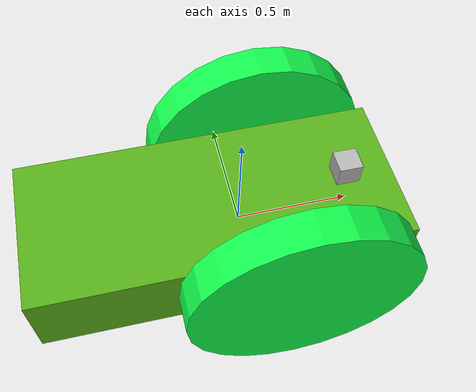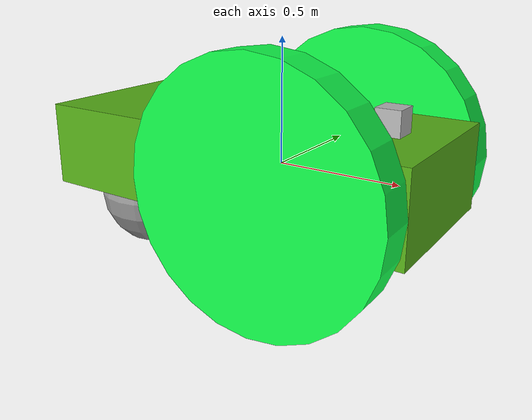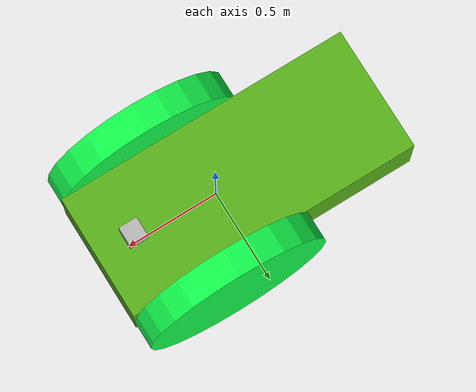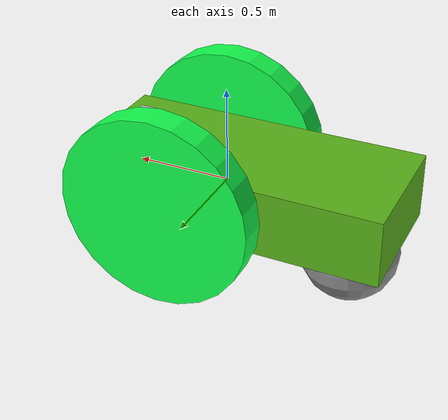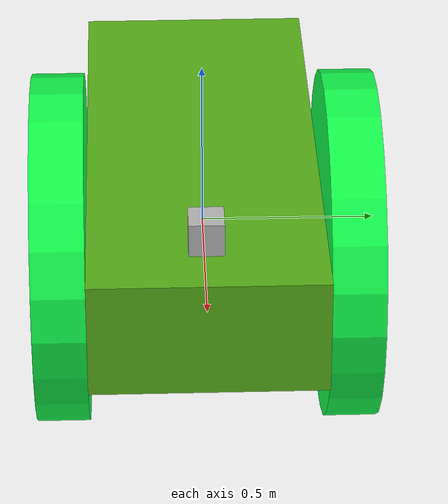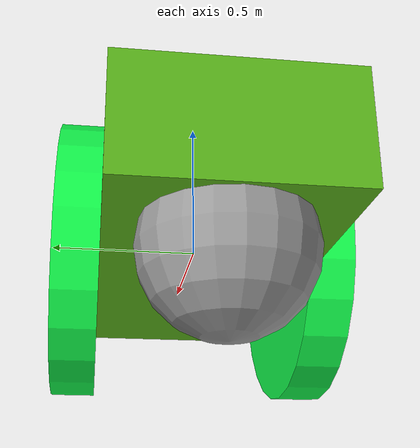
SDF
<?xml version='1.0'?>
<sdf version='1.7'>
  <model name='trail_robo'>
    <link name='link_2'>
      <inertial>
        <mass>0.368994</mass>
        <inertia>
          <ixx>0.0175313</ixx>
          <ixy>0</ixy>
          <ixz>0</ixz>
          <iyy>0.0815571</iyy>
          <iyz>0</iyz>
          <izz>0.0917604</izz>
        </inertia>
        <pose>0 0 0 0 -0 0</pose>
      </inertial>
      <pose>-0.126958 0.000472 0.015714 0 -0 0</pose>
      <gravity>1</gravity>
      <self_collide>0</self_collide>
      <kinematic>0</kinematic>
      <enable_wind>0</enable_wind>
      <visual name='visual'>
        <pose>0 0 0 0 -0 0</pose>
        <geometry>
          <box>
            <size>1.59159 0.671548 0.345189</size>
          </box>
        </geometry>
        <material>
          <lighting>1</lighting>
          <script>
            <uri>file://media/materials/scripts/gazebo.material</uri>
            <name>Gazebo/Grey</name>
          </script>
          <shader type='pixel'>
            <normal_map>__default__</normal_map>
          </shader>
          <ambient>0.35 0.7 0.1 0</ambient>
          <diffuse>0.7 0.7 0.7 1</diffuse>
          <specular>0.01 0.01 0.01 1</specular>
          <emissive>0 0 0 1</emissive>
        </material>
        <transparency>0</transparency>
        <cast_shadows>1</cast_shadows>
      </visual>
      <collision name='collision'>
        <laser_retro>0</laser_retro>
        <max_contacts>10</max_contacts>
        <pose>0 0 0 0 -0 0</pose>
        <geometry>
          <box>
            <size>1.59159 0.671548 0.345189</size>
          </box>
        </geometry>
        <surface>
          <friction>
            <ode>
              <mu>1</mu>
              <mu2>1</mu2>
              <fdir1>0 0 0</fdir1>
              <slip1>0</slip1>
              <slip2>0</slip2>
            </ode>
            <torsional>
              <coefficient>1</coefficient>
              <patch_radius>0</patch_radius>
              <surface_radius>0</surface_radius>
              <use_patch_radius>1</use_patch_radius>
              <ode>
                <slip>0</slip>
              </ode>
            </torsional>
          </friction>
          <bounce>
            <restitution_coefficient>0</restitution_coefficient>
            <threshold>1e+06</threshold>
          </bounce>
          <contact>
            <collide_without_contact>0</collide_without_contact>
            <collide_without_contact_bitmask>1</collide_without_contact_bitmask>
            <collide_bitmask>1</collide_bitmask>
            <ode>
              <soft_cfm>0</soft_cfm>
              <soft_erp>0.2</soft_erp>
              <kp>1e+13</kp>
              <kd>1</kd>
              <max_vel>0.01</max_vel>
              <min_depth>0</min_depth>
            </ode>
            <bullet>
              <split_impulse>1</split_impulse>
              <split_impulse_penetration_threshold>-0.01</split_impulse_penetration_threshold>
              <soft_cfm>0</soft_cfm>
              <soft_erp>0.2</soft_erp>
              <kp>1e+13</kp>
              <kd>1</kd>
            </bullet>
          </contact>
        </surface>
      </collision>
    </link>
    <link name='link_3'>
      <inertial>
        <mass>1</mass>
        <inertia>
          <ixx>0.145833</ixx>
          <ixy>0</ixy>
          <ixz>0</ixz>
          <iyy>0.145833</iyy>
          <iyz>0</iyz>
          <izz>0.125</izz>
        </inertia>
        <pose>0 0 0 0 -0 0</pose>
      </inertial>
      <pose>0.168838 -0.410351 0.015714 1.5707 -0 0</pose>
      <gravity>1</gravity>
      <self_collide>0</self_collide>
      <kinematic>0</kinematic>
      <enable_wind>0</enable_wind>
      <visual name='visual'>
        <pose>0 0 0 0 -0 0</pose>
        <geometry>
          <cylinder>
            <radius>0.5</radius>
            <length>0.15</length>
          </cylinder>
        </geometry>
        <material>
          <lighting>1</lighting>
          <script>
            <uri>file://media/materials/scripts/gazebo.material</uri>
            <name>Gazebo/Grey</name>
          </script>
          <shader type='pixel'>
            <normal_map>__default__</normal_map>
          </shader>
          <ambient>0.07 1 0.3 1</ambient>
          <diffuse>0.7 0.7 0.7 1</diffuse>
          <specular>0.01 0.01 0.01 1</specular>
          <emissive>0 0 0 1</emissive>
        </material>
        <transparency>0</transparency>
        <cast_shadows>1</cast_shadows>
      </visual>
      <collision name='collision'>
        <laser_retro>0</laser_retro>
        <max_contacts>10</max_contacts>
        <pose>0 0 0 0 -0 0</pose>
        <geometry>
          <cylinder>
            <radius>0.5</radius>
            <length>0.15</length>
          </cylinder>
        </geometry>
        <surface>
          <friction>
            <ode>
              <mu>1</mu>
              <mu2>1</mu2>
              <fdir1>0 0 0</fdir1>
              <slip1>0</slip1>
              <slip2>0</slip2>
            </ode>
            <torsional>
              <coefficient>1</coefficient>
              <patch_radius>0</patch_radius>
              <surface_radius>0</surface_radius>
              <use_patch_radius>1</use_patch_radius>
              <ode>
                <slip>0</slip>
              </ode>
            </torsional>
          </friction>
          <bounce>
            <restitution_coefficient>0</restitution_coefficient>
            <threshold>1e+06</threshold>
          </bounce>
          <contact>
            <collide_without_contact>0</collide_without_contact>
            <collide_without_contact_bitmask>1</collide_without_contact_bitmask>
            <collide_bitmask>1</collide_bitmask>
            <ode>
              <soft_cfm>0</soft_cfm>
              <soft_erp>0.2</soft_erp>
              <kp>1e+13</kp>
              <kd>1</kd>
              <max_vel>0.01</max_vel>
              <min_depth>0</min_depth>
            </ode>
            <bullet>
              <split_impulse>1</split_impulse>
              <split_impulse_penetration_threshold>-0.01</split_impulse_penetration_threshold>
              <soft_cfm>0</soft_cfm>
              <soft_erp>0.2</soft_erp>
              <kp>1e+13</kp>
              <kd>1</kd>
            </bullet>
          </contact>
        </surface>
      </collision>
    </link>
    <link name='link_3_clone'>
      <inertial>
        <mass>1</mass>
        <inertia>
          <ixx>0.145833</ixx>
          <ixy>0</ixy>
          <ixz>0</ixz>
          <iyy>0.145833</iyy>
          <iyz>0</iyz>
          <izz>0.125</izz>
        </inertia>
        <pose>0 0 0 0 -0 0</pose>
      </inertial>
      <pose>0.168838 0.411294 0.015714 1.5707 -0 0</pose>
      <gravity>1</gravity>
      <self_collide>0</self_collide>
      <kinematic>0</kinematic>
      <enable_wind>0</enable_wind>
      <visual name='visual'>
        <pose>0 0 0 0 -0 0</pose>
        <geometry>
          <cylinder>
            <radius>0.5</radius>
            <length>0.15</length>
          </cylinder>
        </geometry>
        <material>
          <lighting>1</lighting>
          <script>
            <uri>file://media/materials/scripts/gazebo.material</uri>
            <name>Gazebo/Grey</name>
          </script>
          <shader type='pixel'>
            <normal_map>__default__</normal_map>
          </shader>
          <ambient>0.07 1 0.3 1</ambient>
          <diffuse>0.7 0.7 0.7 1</diffuse>
          <specular>0.01 0.01 0.01 1</specular>
          <emissive>0 0 0 1</emissive>
        </material>
        <transparency>0</transparency>
        <cast_shadows>1</cast_shadows>
      </visual>
      <collision name='collision'>
        <laser_retro>0</laser_retro>
        <max_contacts>10</max_contacts>
        <pose>0 0 0 0 -0 0</pose>
        <geometry>
          <cylinder>
            <radius>0.5</radius>
            <length>0.15</length>
          </cylinder>
        </geometry>
        <surface>
          <friction>
            <ode>
              <mu>1</mu>
              <mu2>1</mu2>
              <fdir1>0 0 0</fdir1>
              <slip1>0</slip1>
              <slip2>0</slip2>
            </ode>
            <torsional>
              <coefficient>1</coefficient>
              <patch_radius>0</patch_radius>
              <surface_radius>0</surface_radius>
              <use_patch_radius>1</use_patch_radius>
              <ode>
                <slip>0</slip>
              </ode>
            </torsional>
          </friction>
          <bounce>
            <restitution_coefficient>0</restitution_coefficient>
            <threshold>1e+06</threshold>
          </bounce>
          <contact>
            <collide_without_contact>0</collide_without_contact>
            <collide_without_contact_bitmask>1</collide_without_contact_bitmask>
            <collide_bitmask>1</collide_bitmask>
            <ode>
              <soft_cfm>0</soft_cfm>
              <soft_erp>0.2</soft_erp>
              <kp>1e+13</kp>
              <kd>1</kd>
              <max_vel>0.01</max_vel>
              <min_depth>0</min_depth>
            </ode>
            <bullet>
              <split_impulse>1</split_impulse>
              <split_impulse_penetration_threshold>-0.01</split_impulse_penetration_threshold>
              <soft_cfm>0</soft_cfm>
              <soft_erp>0.2</soft_erp>
              <kp>1e+13</kp>
              <kd>1</kd>
            </bullet>
          </contact>
        </surface>
      </collision>
    </link>
    <link name='link_5'>
      <inertial>
        <mass>1</mass>
        <inertia>
          <ixx>0.1</ixx>
          <ixy>0</ixy>
          <ixz>0</ixz>
          <iyy>0.1</iyy>
          <iyz>0</iyz>
          <izz>0.1</izz>
        </inertia>
        <pose>0 0 0 0 -0 0</pose>
      </inertial>
      <pose>-0.672754 0.000472 -0.234286 0 -0 0</pose>
      <gravity>1</gravity>
      <self_collide>0</self_collide>
      <kinematic>0</kinematic>
      <enable_wind>0</enable_wind>
      <visual name='visual'>
        <pose>0 0 0 0 -0 0</pose>
        <geometry>
          <sphere>
            <radius>0.25</radius>
          </sphere>
        </geometry>
        <material>
          <lighting>1</lighting>
          <script>
            <uri>file://media/materials/scripts/gazebo.material</uri>
            <name>Gazebo/Grey</name>
          </script>
          <shader type='pixel'>
            <normal_map>__default__</normal_map>
          </shader>
          <ambient>0.3 0.3 0.3 1</ambient>
          <diffuse>0.7 0.7 0.7 1</diffuse>
          <specular>0.01 0.01 0.01 1</specular>
          <emissive>0 0 0 1</emissive>
        </material>
        <transparency>0</transparency>
        <cast_shadows>1</cast_shadows>
      </visual>
      <collision name='collision'>
        <laser_retro>0</laser_retro>
        <max_contacts>10</max_contacts>
        <pose>0 0 0 0 -0 0</pose>
        <geometry>
          <sphere>
            <radius>0.25</radius>
          </sphere>
        </geometry>
        <surface>
          <friction>
            <ode>
              <mu>1</mu>
              <mu2>1</mu2>
              <fdir1>0 0 0</fdir1>
              <slip1>0</slip1>
              <slip2>0</slip2>
            </ode>
            <torsional>
              <coefficient>1</coefficient>
              <patch_radius>0</patch_radius>
              <surface_radius>0</surface_radius>
              <use_patch_radius>1</use_patch_radius>
              <ode>
                <slip>0</slip>
              </ode>
            </torsional>
          </friction>
          <bounce>
            <restitution_coefficient>0</restitution_coefficient>
            <threshold>1e+06</threshold>
          </bounce>
          <contact>
            <collide_without_contact>0</collide_without_contact>
            <collide_without_contact_bitmask>1</collide_without_contact_bitmask>
            <collide_bitmask>1</collide_bitmask>
            <ode>
              <soft_cfm>0</soft_cfm>
              <soft_erp>0.2</soft_erp>
              <kp>1e+13</kp>
              <kd>1</kd>
              <max_vel>0.01</max_vel>
              <min_depth>0</min_depth>
            </ode>
            <bullet>
              <split_impulse>1</split_impulse>
              <split_impulse_penetration_threshold>-0.01</split_impulse_penetration_threshold>
              <soft_cfm>0</soft_cfm>
              <soft_erp>0.2</soft_erp>
              <kp>1e+13</kp>
              <kd>1</kd>
            </bullet>
          </contact>
        </surface>
      </collision>
    </link>
    <model name='depth_camera'>
      <link name='link'>
        <pose>0 0 0.05 0 -0 0</pose>
        <inertial>
          <mass>0.1</mass>
          <inertia>
            <ixx>0.000166667</ixx>
            <iyy>0.000166667</iyy>
            <izz>0.000166667</izz>
            <ixy>0</ixy>
            <ixz>0</ixz>
            <iyz>0</iyz>
          </inertia>
        </inertial>
        <collision name='collision'>
          <geometry>
            <box>
              <size>0.1 0.1 0.1</size>
            </box>
          </geometry>
          <surface/>
        </collision>
        <visual name='visual'>
          <geometry>
            <box>
              <size>0.1 0.1 0.1</size>
            </box>
          </geometry>
        </visual>
        <sensor name='camera' type='depth'>
          <camera>
            <horizontal_fov>1.047</horizontal_fov>
            <image>
              <width>320</width>
              <height>240</height>
            </image>
            <clip>
              <near>0.1</near>
              <far>100</far>
            </clip>
          </camera>
          <always_on>1</always_on>
          <update_rate>30</update_rate>
          <visualize>1</visualize>
        </sensor>
      </link>
      <pose>0.462036 -0.001892 0.187142 0 -0 0</pose>
    </model>
    <joint name='left_wheel_joint' type='revolute'>
      <parent>link_2</parent>
      <child>link_3</child>
      <pose>0 0 0 0 -0 0</pose>
      <axis>
        <xyz>0 0 1</xyz>
        <limit>
          <lower>-1.79769e+308</lower>
          <upper>1.79769e+308</upper>
          <effort>-1</effort>
          <velocity>-1</velocity>
        </limit>
        <dynamics>
          <spring_reference>0</spring_reference>
          <spring_stiffness>0</spring_stiffness>
          <damping>0</damping>
          <friction>0</friction>
        </dynamics>
      </axis>
      <physics>
        <ode>
          <limit>
            <cfm>0</cfm>
            <erp>0.2</erp>
          </limit>
          <suspension>
            <cfm>0</cfm>
            <erp>0.2</erp>
          </suspension>
        </ode>
      </physics>
    </joint>
    <joint name='right_wheel_joint' type='revolute'>
      <parent>link_2</parent>
      <child>link_3_clone</child>
      <pose>0 0 0 0 -0 0</pose>
      <axis>
        <xyz>0 0 1</xyz>
        <limit>
          <lower>-1.79769e+308</lower>
          <upper>1.79769e+308</upper>
          <effort>-1</effort>
          <velocity>-1</velocity>
        </limit>
        <dynamics>
          <spring_reference>0</spring_reference>
          <spring_stiffness>0</spring_stiffness>
          <damping>0</damping>
          <friction>0</friction>
        </dynamics>
      </axis>
      <physics>
        <ode>
          <limit>
            <cfm>0</cfm>
            <erp>0.2</erp>
          </limit>
          <suspension>
            <cfm>0</cfm>
            <erp>0.2</erp>
          </suspension>
        </ode>
      </physics>
    </joint>
    <joint name='link_2_JOINT_3' type='ball'>
      <parent>link_2</parent>
      <child>link_5</child>
      <pose>0 0 0 0 -0 0</pose>
      <physics>
        <ode>
          <limit>
            <cfm>0</cfm>
            <erp>0.2</erp>
          </limit>
          <suspension>
            <cfm>0</cfm>
            <erp>0.2</erp>
          </suspension>
        </ode>
      </physics>
    </joint>
    <joint name='link_2_JOINT_5' type='fixed'>
      <parent>link_2</parent>
      <child>depth_camera::link</child>
      <pose>0 0 0 0 -0 0</pose>
      <physics>
        <ode>
          <limit>
            <cfm>0</cfm>
            <erp>0.2</erp>
          </limit>
          <suspension>
            <cfm>0</cfm>
            <erp>0.2</erp>
          </suspension>
        </ode>
      </physics>
    </joint>
    <static>0</static>
    <allow_auto_disable>1</allow_auto_disable>
    <plugin name='follower' filename='libFollowerPlugin.so'/>
  </model>
</sdf>
